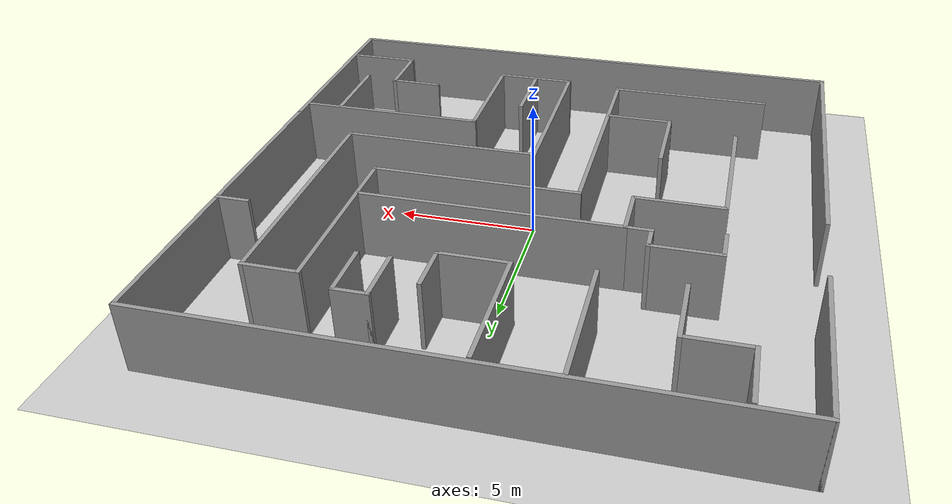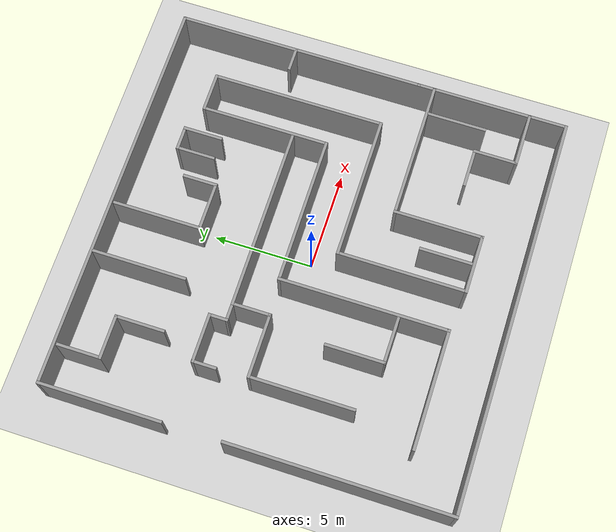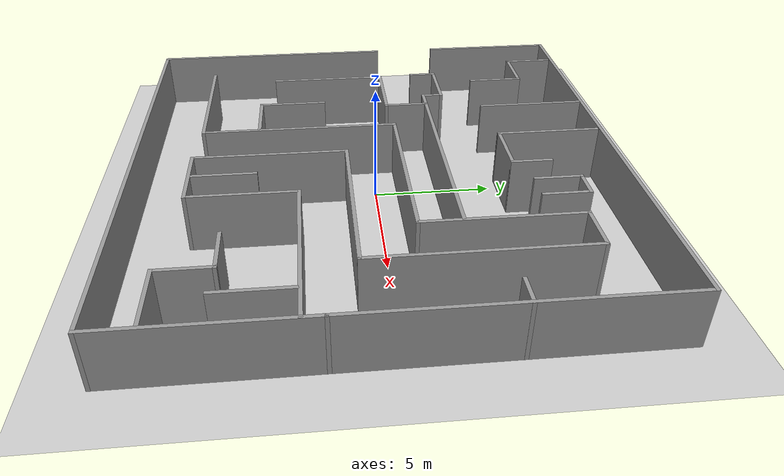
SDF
<sdf version="1.7">
 <world name="default">
  <light name="sun" type="directional">
   <pose>0 0 10 0 -0 0</pose>
   <diffuse>0.8 0.8 0.8 1</diffuse>
   <specular>0.2 0.2 0.2 1</specular>
   <attenuation>
    <range>1000</range>
    <constant>0.9</constant>
    <linear>0.01</linear>
    <quadratic>0.001</quadratic>
   </attenuation>
   <direction>-0.5 0.1 -0.9</direction>
   <spot><inner_angle>0</inner_angle><outer_angle>0</outer_angle><falloff>0</falloff></spot>
  </light>
  <model name="ground_plane">
   <static>1</static>
   <link name="link">
    <collision name="collision">
     <geometry><plane><normal>0 0 1</normal><size>100 100</size></plane></geometry>
     <surface><friction><ode><mu>100</mu><mu2>50</mu2></ode></friction></surface>
    </collision>
    <visual name="visual">
     <cast_shadows>0</cast_shadows>
     <geometry><plane><normal>0 0 1</normal><size>100 100</size></plane></geometry>
     <material>
      <script><uri>file://media/materials/scripts/gazebo.material</uri><name>Gazebo/Grey</name></script>
     </material>
    </visual>
   </link>
  </model>
  <gravity>0 0 -9.8</gravity>
  <magnetic_field>6e-06 2.3e-05 -4.2e-05</magnetic_field>
  <atmosphere type="adiabatic"/>
  <physics type="ode">
   <max_step_size>0.001</max_step_size>
   <real_time_factor>1</real_time_factor>
   <real_time_update_rate>1000</real_time_update_rate>
  </physics>
  <scene><ambient>0.4 0.4 0.4 1</ambient><background>0.7 0.7 0.7 1</background><shadows>1</shadows></scene>
  <spherical_coordinates>
   <surface_model>EARTH_WGS84</surface_model>
   <latitude_deg>0</latitude_deg>
   <longitude_deg>0</longitude_deg>
   <elevation>0</elevation>
   <heading_deg>0</heading_deg>
  </spherical_coordinates>
  <model name="final_maze_1">
   <pose>0.000924 0 0 0 -0 0</pose>
   <link name="Wall_0">
    <collision name="Wall_0_Collision">
     <geometry><box><size>20.15 0.15 2.5</size></box></geometry>
     <pose>0 0 1.25 0 -0 0</pose>
    </collision>
    <visual name="Wall_0_Visual">
     <pose>0 0 1.25 0 -0 0</pose>
     <geometry><box><size>20.15 0.15 2.5</size></box></geometry>
     <material>
      <script><uri>file://media/materials/scripts/gazebo.material</uri><name>Gazebo/Grey</name></script>
      <ambient>1 1 1 1</ambient>
     </material>
     <meta><layer>0</layer></meta>
    </visual>
    <pose>-0.000924 -10 0 0 -0 0</pose>
   </link>
   <link name="Wall_10">
    <collision name="Wall_10_Collision">
     <geometry><box><size>11.15 0.15 2.5</size></box></geometry>
     <pose>0 0 1.25 0 -0 0</pose>
    </collision>
    <visual name="Wall_10_Visual">
     <pose>0 0 1.25 0 -0 0</pose>
     <geometry><box><size>11.15 0.15 2.5</size></box></geometry>
     <material>
      <script><uri>file://media/materials/scripts/gazebo.material</uri><name>Gazebo/Grey</name></script>
      <ambient>1 1 1 1</ambient>
     </material>
     <meta><layer>0</layer></meta>
    </visual>
    <pose>-10.0009 -4.5 0 0 -0 1.5708</pose>
   </link>
   <link name="Wall_18">
    <collision name="Wall_18_Collision">
     <geometry><box><size>2.75 0.15 2.5</size></box></geometry>
     <pose>0 0 1.25 0 -0 0</pose>
    </collision>
    <visual name="Wall_18_Visual">
     <pose>0 0 1.25 0 -0 0</pose>
     <geometry><box><size>2.75 0.15 2.5</size></box></geometry>
     <material>
      <script><uri>file://media/materials/scripts/gazebo.material</uri><name>Gazebo/Grey</name></script>
      <ambient>1 1 1 1</ambient>
     </material>
     <meta><layer>0</layer></meta>
    </visual>
    <pose>8.66548 -8.14504 0 0 -0 3.14159</pose>
   </link>
   <link name="Wall_19">
    <collision name="Wall_19_Collision">
     <geometry><box><size>2.25 0.15 2.5</size></box></geometry>
     <pose>0 0 1.25 0 -0 0</pose>
    </collision>
    <visual name="Wall_19_Visual">
     <pose>0 0 1.25 0 -0 0</pose>
     <geometry><box><size>2.25 0.15 2.5</size></box></geometry>
     <material>
      <script><uri>file://media/materials/scripts/gazebo.material</uri><name>Gazebo/Grey</name></script>
      <ambient>1 1 1 1</ambient>
     </material>
     <meta><layer>0</layer></meta>
    </visual>
    <pose>7.36548 -7.09504 0 0 -0 1.5708</pose>
   </link>
   <link name="Wall_2">
    <collision name="Wall_2_Collision">
     <geometry><box><size>0.15 0.15 2.5</size></box></geometry>
     <pose>0 0 1.25 0 -0 0</pose>
    </collision>
    <visual name="Wall_2_Visual">
     <pose>0 0 1.25 0 -0 0</pose>
     <geometry><box><size>0.15 0.15 2.5</size></box></geometry>
     <material>
      <script><uri>file://media/materials/scripts/gazebo.material</uri><name>Gazebo/Grey</name></script>
      <ambient>1 1 1 1</ambient>
     </material>
     <meta><layer>0</layer></meta>
    </visual>
    <pose>9.99908 -2.43 0 0 -0 0</pose>
   </link>
   <link name="Wall_20">
    <collision name="Wall_20_Collision">
     <geometry><box><size>2 0.15 2.5</size></box></geometry>
     <pose>0 0 1.25 0 -0 0</pose>
    </collision>
    <visual name="Wall_20_Visual">
     <pose>0 0 1.25 0 -0 0</pose>
     <geometry><box><size>2 0.15 2.5</size></box></geometry>
     <material>
      <script><uri>file://media/materials/scripts/gazebo.material</uri><name>Gazebo/Grey</name></script>
      <ambient>1 1 1 1</ambient>
     </material>
     <meta><layer>0</layer></meta>
    </visual>
    <pose>6.44048 -6.04504 0 0 -0 3.14159</pose>
   </link>
   <link name="Wall_22">
    <collision name="Wall_22_Collision">
     <geometry><box><size>7 0.15 2.5</size></box></geometry>
     <pose>0 0 1.25 0 -0 0</pose>
    </collision>
    <visual name="Wall_22_Visual">
     <pose>0 0 1.25 0 -0 0</pose>
     <geometry><box><size>7 0.15 2.5</size></box></geometry>
     <material>
      <script><uri>file://media/materials/scripts/gazebo.material</uri><name>Gazebo/Grey</name></script>
      <ambient>1 1 1 1</ambient>
     </material>
     <meta><layer>0</layer></meta>
    </visual>
    <pose>6.54048 -3.23518 0 0 -0 3.14159</pose>
   </link>
   <link name="Wall_23">
    <collision name="Wall_23_Collision">
     <geometry><box><size>4.5 0.15 2.5</size></box></geometry>
     <pose>0 0 1.25 0 -0 0</pose>
    </collision>
    <visual name="Wall_23_Visual">
     <pose>0 0 1.25 0 -0 0</pose>
     <geometry><box><size>4.5 0.15 2.5</size></box></geometry>
     <material>
      <script><uri>file://media/materials/scripts/gazebo.material</uri><name>Gazebo/Grey</name></script>
      <ambient>1 1 1 1</ambient>
     </material>
     <meta><layer>0</layer></meta>
    </visual>
    <pose>3.11548 -5.41018 0 0 -0 -1.5708</pose>
   </link>
   <link name="Wall_24">
    <collision name="Wall_24_Collision">
     <geometry><box><size>3 0.15 2.5</size></box></geometry>
     <pose>0 0 1.25 0 -0 0</pose>
    </collision>
    <visual name="Wall_24_Visual">
     <pose>0 0 1.25 0 -0 0</pose>
     <geometry><box><size>3 0.15 2.5</size></box></geometry>
     <material>
      <script><uri>file://media/materials/scripts/gazebo.material</uri><name>Gazebo/Grey</name></script>
      <ambient>1 1 1 1</ambient>
     </material>
     <meta><layer>0</layer></meta>
    </visual>
    <pose>1.69048 -7.58518 0 0 -0 3.14159</pose>
   </link>
   <link name="Wall_25">
    <collision name="Wall_25_Collision">
     <geometry><box><size>6.5 0.15 2.5</size></box></geometry>
     <pose>0 0 1.25 0 -0 0</pose>
    </collision>
    <visual name="Wall_25_Visual">
     <pose>0 0 1.25 0 -0 0</pose>
     <geometry><box><size>6.5 0.15 2.5</size></box></geometry>
     <material>
      <script><uri>file://media/materials/scripts/gazebo.material</uri><name>Gazebo/Grey</name></script>
      <ambient>1 1 1 1</ambient>
     </material>
     <meta><layer>0</layer></meta>
    </visual>
    <pose>0.265481 -4.41018 0 0 -0 1.5708</pose>
   </link>
   <link name="Wall_26">
    <collision name="Wall_26_Collision">
     <geometry><box><size>7.25 0.15 2.5</size></box></geometry>
     <pose>0 0 1.25 0 -0 0</pose>
    </collision>
    <visual name="Wall_26_Visual">
     <pose>0 0 1.25 0 -0 0</pose>
     <geometry><box><size>7.25 0.15 2.5</size></box></geometry>
     <material>
      <script><uri>file://media/materials/scripts/gazebo.material</uri><name>Gazebo/Grey</name></script>
      <ambient>1 1 1 1</ambient>
     </material>
     <meta><layer>0</layer></meta>
    </visual>
    <pose>3.81548 -1.23518 0 0 -0 0</pose>
   </link>
   <link name="Wall_27">
    <collision name="Wall_27_Collision">
     <geometry><box><size>8.75 0.15 2.5</size></box></geometry>
     <pose>0 0 1.25 0 -0 0</pose>
    </collision>
    <visual name="Wall_27_Visual">
     <pose>0 0 1.25 0 -0 0</pose>
     <geometry><box><size>8.75 0.15 2.5</size></box></geometry>
     <material>
      <script><uri>file://media/materials/scripts/gazebo.material</uri><name>Gazebo/Grey</name></script>
      <ambient>1 1 1 1</ambient>
     </material>
     <meta><layer>0</layer></meta>
    </visual>
    <pose>7.36548 3.06482 0 0 -0 1.5708</pose>
   </link>
   <link name="Wall_28">
    <collision name="Wall_28_Collision">
     <geometry><box><size>2 0.15 2.5</size></box></geometry>
     <pose>0 0 1.25 0 -0 0</pose>
    </collision>
    <visual name="Wall_28_Visual">
     <pose>0 0 1.25 0 -0 0</pose>
     <geometry><box><size>2 0.15 2.5</size></box></geometry>
     <material>
      <script><uri>file://media/materials/scripts/gazebo.material</uri><name>Gazebo/Grey</name></script>
      <ambient>1 1 1 1</ambient>
     </material>
     <meta><layer>0</layer></meta>
    </visual>
    <pose>6.44048 7.36482 0 0 -0 3.14159</pose>
   </link>
   <link name="Wall_29">
    <collision name="Wall_29_Collision">
     <geometry><box><size>6.5 0.15 2.5</size></box></geometry>
     <pose>0 0 1.25 0 -0 0</pose>
    </collision>
    <visual name="Wall_29_Visual">
     <pose>0 0 1.25 0 -0 0</pose>
     <geometry><box><size>6.5 0.15 2.5</size></box></geometry>
     <material>
      <script><uri>file://media/materials/scripts/gazebo.material</uri><name>Gazebo/Grey</name></script>
      <ambient>1 1 1 1</ambient>
     </material>
     <meta><layer>0</layer></meta>
    </visual>
    <pose>5.51548 4.18982 0 0 -0 -1.5708</pose>
   </link>
   <link name="Wall_30">
    <collision name="Wall_30_Collision">
     <geometry><box><size>7.5 0.15 2.5</size></box></geometry>
     <pose>0 0 1.25 0 -0 0</pose>
    </collision>
    <visual name="Wall_30_Visual">
     <pose>0 0 1.25 0 -0 0</pose>
     <geometry><box><size>7.5 0.15 2.5</size></box></geometry>
     <material>
      <script><uri>file://media/materials/scripts/gazebo.material</uri><name>Gazebo/Grey</name></script>
      <ambient>1 1 1 1</ambient>
     </material>
     <meta><layer>0</layer></meta>
    </visual>
    <pose>1.84048 1.01482 0 0 -0 3.14159</pose>
   </link>
   <link name="Wall_31">
    <collision name="Wall_31_Collision">
     <geometry><box><size>8.5 0.15 2.5</size></box></geometry>
     <pose>0 0 1.25 0 -0 0</pose>
    </collision>
    <visual name="Wall_31_Visual">
     <pose>0 0 1.25 0 -0 0</pose>
     <geometry><box><size>8.5 0.15 2.5</size></box></geometry>
     <material>
      <script><uri>file://media/materials/scripts/gazebo.material</uri><name>Gazebo/Grey</name></script>
      <ambient>1 1 1 1</ambient>
     </material>
     <meta><layer>0</layer></meta>
    </visual>
    <pose>-1.83452 -3.16018 0 0 -0 -1.5708</pose>
   </link>
   <link name="Wall_32">
    <collision name="Wall_32_Collision">
     <geometry><box><size>6 0.15 2.5</size></box></geometry>
     <pose>0 0 1.25 0 -0 0</pose>
    </collision>
    <visual name="Wall_32_Visual">
     <pose>0 0 1.25 0 -0 0</pose>
     <geometry><box><size>6 0.15 2.5</size></box></geometry>
     <material>
      <script><uri>file://media/materials/scripts/gazebo.material</uri><name>Gazebo/Grey</name></script>
      <ambient>1 1 1 1</ambient>
     </material>
     <meta><layer>0</layer></meta>
    </visual>
    <pose>-4.75952 -7.33518 0 0 -0 3.14159</pose>
   </link>
   <link name="Wall_34">
    <collision name="Wall_34_Collision">
     <geometry><box><size>2.25 0.15 2.5</size></box></geometry>
     <pose>0 0 1.25 0 -0 0</pose>
    </collision>
    <visual name="Wall_34_Visual">
     <pose>0 0 1.25 0 -0 0</pose>
     <geometry><box><size>2.25 0.15 2.5</size></box></geometry>
     <material>
      <script><uri>file://media/materials/scripts/gazebo.material</uri><name>Gazebo/Grey</name></script>
      <ambient>1 1 1 1</ambient>
     </material>
     <meta><layer>0</layer></meta>
    </visual>
    <pose>-8.03051 8.7523 0 0 -0 -1.5708</pose>
   </link>
   <link name="Wall_35">
    <collision name="Wall_35_Collision">
     <geometry><box><size>2.25 0.15 2.5</size></box></geometry>
     <pose>0 0 1.25 0 -0 0</pose>
    </collision>
    <visual name="Wall_35_Visual">
     <pose>0 0 1.25 0 -0 0</pose>
     <geometry><box><size>2.25 0.15 2.5</size></box></geometry>
     <material>
      <script><uri>file://media/materials/scripts/gazebo.material</uri><name>Gazebo/Grey</name></script>
      <ambient>1 1 1 1</ambient>
     </material>
     <meta><layer>0</layer></meta>
    </visual>
    <pose>-6.98051 7.7023 0 0 -0 0</pose>
   </link>
   <link name="Wall_36">
    <collision name="Wall_36_Collision">
     <geometry><box><size>2.5 0.15 2.5</size></box></geometry>
     <pose>0 0 1.25 0 -0 0</pose>
    </collision>
    <visual name="Wall_36_Visual">
     <pose>0 0 1.25 0 -0 0</pose>
     <geometry><box><size>2.5 0.15 2.5</size></box></geometry>
     <material>
      <script><uri>file://media/materials/scripts/gazebo.material</uri><name>Gazebo/Grey</name></script>
      <ambient>1 1 1 1</ambient>
     </material>
     <meta><layer>0</layer></meta>
    </visual>
    <pose>-5.93051 6.5273 0 0 -0 -1.5708</pose>
   </link>
   <link name="Wall_38">
    <collision name="Wall_38_Collision">
     <geometry><box><size>4.75 0.15 2.5</size></box></geometry>
     <pose>0 0 1.25 0 -0 0</pose>
    </collision>
    <visual name="Wall_38_Visual">
     <pose>0 0 1.25 0 -0 0</pose>
     <geometry><box><size>4.75 0.15 2.5</size></box></geometry>
     <material>
      <script><uri>file://media/materials/scripts/gazebo.material</uri><name>Gazebo/Grey</name></script>
      <ambient>1 1 1 1</ambient>
     </material>
     <meta><layer>0</layer></meta>
    </visual>
    <pose>-3.20078 7.57992 0 0 -0 -1.5708</pose>
   </link>
   <link name="Wall_4">
    <collision name="Wall_4_Collision">
     <geometry><box><size>20.15 0.15 2.5</size></box></geometry>
     <pose>0 0 1.25 0 -0 0</pose>
    </collision>
    <visual name="Wall_4_Visual">
     <pose>0 0 1.25 0 -0 0</pose>
     <geometry><box><size>20.15 0.15 2.5</size></box></geometry>
     <material>
      <script><uri>file://media/materials/scripts/gazebo.material</uri><name>Gazebo/Grey</name></script>
      <ambient>1 1 1 1</ambient>
     </material>
     <meta><layer>0</layer></meta>
    </visual>
    <pose>-0.000924 10 0 0 -0 0</pose>
   </link>
   <link name="Wall_40">
    <collision name="Wall_40_Collision">
     <geometry><box><size>4.5 0.15 2.5</size></box></geometry>
     <pose>0 0 1.25 0 -0 0</pose>
    </collision>
    <visual name="Wall_40_Visual">
     <pose>0 0 1.25 0 -0 0</pose>
     <geometry><box><size>4.5 0.15 2.5</size></box></geometry>
     <material>
      <script><uri>file://media/materials/scripts/gazebo.material</uri><name>Gazebo/Grey</name></script>
      <ambient>1 1 1 1</ambient>
     </material>
     <meta><layer>0</layer></meta>
    </visual>
    <pose>-0.574094 7.62987 0 0 -0 -1.5708</pose>
   </link>
   <link name="Wall_42">
    <collision name="Wall_42_Collision">
     <geometry><box><size>2.46313 0.15 2.5</size></box></geometry>
     <pose>0 0 1.25 0 -0 0</pose>
    </collision>
    <visual name="Wall_42_Visual">
     <pose>0 0 1.25 0 -0 0</pose>
     <geometry><box><size>2.46313 0.15 2.5</size></box></geometry>
     <material>
      <script><uri>file://media/materials/scripts/gazebo.material</uri><name>Gazebo/Grey</name></script>
      <ambient>1 1 1 1</ambient>
     </material>
     <meta><layer>0</layer></meta>
    </visual>
    <pose>-3.07794 -4.90709 0 0 -0 3.13494</pose>
   </link>
   <link name="Wall_43">
    <collision name="Wall_43_Collision">
     <geometry><box><size>3 0.15 2.5</size></box></geometry>
     <pose>0 0 1.25 0 -0 0</pose>
    </collision>
    <visual name="Wall_43_Visual">
     <pose>0 0 1.25 0 -0 0</pose>
     <geometry><box><size>3 0.15 2.5</size></box></geometry>
     <material>
      <script><uri>file://media/materials/scripts/gazebo.material</uri><name>Gazebo/Grey</name></script>
      <ambient>1 1 1 1</ambient>
     </material>
     <meta><layer>0</layer></meta>
    </visual>
    <pose>-4.2345 -3.47948 0 0 -0 1.5708</pose>
   </link>
   <link name="Wall_45">
    <collision name="Wall_45_Collision">
     <geometry><box><size>2.5 0.15 2.5</size></box></geometry>
     <pose>0 0 1.25 0 -0 0</pose>
    </collision>
    <visual name="Wall_45_Visual">
     <pose>0 0 1.25 0 -0 0</pose>
     <geometry><box><size>2.5 0.15 2.5</size></box></geometry>
     <material>
      <script><uri>file://media/materials/scripts/gazebo.material</uri><name>Gazebo/Grey</name></script>
      <ambient>1 1 1 1</ambient>
     </material>
     <meta><layer>0</layer></meta>
    </visual>
    <pose>0.600906 5.45487 0 0 -0 0</pose>
   </link>
   <link name="Wall_46">
    <collision name="Wall_46_Collision">
     <geometry><box><size>1.75 0.15 2.5</size></box></geometry>
     <pose>0 0 1.25 0 -0 0</pose>
    </collision>
    <visual name="Wall_46_Visual">
     <pose>0 0 1.25 0 -0 0</pose>
     <geometry><box><size>1.75 0.15 2.5</size></box></geometry>
     <material>
      <script><uri>file://media/materials/scripts/gazebo.material</uri><name>Gazebo/Grey</name></script>
      <ambient>1 1 1 1</ambient>
     </material>
     <meta><layer>0</layer></meta>
    </visual>
    <pose>1.77591 6.25487 0 0 -0 1.5708</pose>
   </link>
   <link name="Wall_48">
    <collision name="Wall_48_Collision">
     <geometry><box><size>9.25 0.15 2.5</size></box></geometry>
     <pose>0 0 1.25 0 -0 0</pose>
    </collision>
    <visual name="Wall_48_Visual">
     <pose>0 0 1.25 0 -0 0</pose>
     <geometry><box><size>9.25 0.15 2.5</size></box></geometry>
     <material>
      <script><uri>file://media/materials/scripts/gazebo.material</uri><name>Gazebo/Grey</name></script>
      <ambient>1 1 1 1</ambient>
     </material>
     <meta><layer>0</layer></meta>
    </visual>
    <pose>0.879622 2.71395 0 0 -0 3.14159</pose>
   </link>
   <link name="Wall_49">
    <collision name="Wall_49_Collision">
     <geometry><box><size>2 0.15 2.5</size></box></geometry>
     <pose>0 0 1.25 0 -0 0</pose>
    </collision>
    <visual name="Wall_49_Visual">
     <pose>0 0 1.25 0 -0 0</pose>
     <geometry><box><size>2 0.15 2.5</size></box></geometry>
     <material>
      <script><uri>file://media/materials/scripts/gazebo.material</uri><name>Gazebo/Grey</name></script>
      <ambient>1 1 1 1</ambient>
     </material>
     <meta><layer>0</layer></meta>
    </visual>
    <pose>-3.67038 1.78895 0 0 -0 -1.5708</pose>
   </link>
   <link name="Wall_50">
    <collision name="Wall_50_Collision">
     <geometry><box><size>3.25 0.15 2.5</size></box></geometry>
     <pose>0 0 1.25 0 -0 0</pose>
    </collision>
    <visual name="Wall_50_Visual">
     <pose>0 0 1.25 0 -0 0</pose>
     <geometry><box><size>3.25 0.15 2.5</size></box></geometry>
     <material>
      <script><uri>file://media/materials/scripts/gazebo.material</uri><name>Gazebo/Grey</name></script>
      <ambient>1 1 1 1</ambient>
     </material>
     <meta><layer>0</layer></meta>
    </visual>
    <pose>-5.22038 0.863952 0 0 -0 3.14159</pose>
   </link>
   <link name="Wall_51">
    <collision name="Wall_51_Collision">
     <geometry><box><size>5.25 0.15 2.5</size></box></geometry>
     <pose>0 0 1.25 0 -0 0</pose>
    </collision>
    <visual name="Wall_51_Visual">
     <pose>0 0 1.25 0 -0 0</pose>
     <geometry><box><size>5.25 0.15 2.5</size></box></geometry>
     <material>
      <script><uri>file://media/materials/scripts/gazebo.material</uri><name>Gazebo/Grey</name></script>
      <ambient>1 1 1 1</ambient>
     </material>
     <meta><layer>0</layer></meta>
    </visual>
    <pose>-6.77038 -1.68605 0 0 -0 -1.5708</pose>
   </link>
   <link name="Wall_56">
    <collision name="Wall_56_Collision">
     <geometry><box><size>1.25 0.15 2.5</size></box></geometry>
     <pose>0 0 1.25 0 -0 0</pose>
    </collision>
    <visual name="Wall_56_Visual">
     <pose>0 0 1.25 0 -0 0</pose>
     <geometry><box><size>1.25 0.15 2.5</size></box></geometry>
     <material>
      <script><uri>file://media/materials/scripts/gazebo.material</uri><name>Gazebo/Grey</name></script>
      <ambient>1 1 1 1</ambient>
     </material>
     <meta><layer>0</layer></meta>
    </visual>
    <pose>3.63659 7.89595 0 0 -0 0</pose>
   </link>
   <link name="Wall_59">
    <collision name="Wall_59_Collision">
     <geometry><box><size>2 0.15 2.5</size></box></geometry>
     <pose>0 0 1.25 0 -0 0</pose>
    </collision>
    <visual name="Wall_59_Visual">
     <pose>0 0 1.25 0 -0 0</pose>
     <geometry><box><size>2 0.15 2.5</size></box></geometry>
     <material>
      <script><uri>file://media/materials/scripts/gazebo.material</uri><name>Gazebo/Grey</name></script>
      <ambient>1 1 1 1</ambient>
     </material>
     <meta><layer>0</layer></meta>
    </visual>
    <pose>3.08659 6.97095 0 0 -0 -1.5708</pose>
   </link>
   <link name="Wall_6">
    <collision name="Wall_6_Collision">
     <geometry><box><size>20.15 0.15 2.5</size></box></geometry>
     <pose>0 0 1.25 0 -0 0</pose>
    </collision>
    <visual name="Wall_6_Visual">
     <pose>0 0 1.25 0 -0 0</pose>
     <geometry><box><size>20.15 0.15 2.5</size></box></geometry>
     <material>
      <script><uri>file://media/materials/scripts/gazebo.material</uri><name>Gazebo/Grey</name></script>
      <ambient>1 1 1 1</ambient>
     </material>
     <meta><layer>0</layer></meta>
    </visual>
    <pose>9.99908 0 0 0 -0 -1.5708</pose>
   </link>
   <link name="Wall_61">
    <collision name="Wall_61_Collision">
     <geometry><box><size>2 0.15 2.5</size></box></geometry>
     <pose>0 0 1.25 0 -0 0</pose>
    </collision>
    <visual name="Wall_61_Visual">
     <pose>0 0 1.25 0 -0 0</pose>
     <geometry><box><size>2 0.15 2.5</size></box></geometry>
     <material>
      <script><uri>file://media/materials/scripts/gazebo.material</uri><name>Gazebo/Grey</name></script>
      <ambient>1 1 1 1</ambient>
     </material>
     <meta><layer>0</layer></meta>
    </visual>
    <pose>4.18659 6.97095 0 0 -0 -1.5708</pose>
   </link>
   <link name="Wall_63">
    <collision name="Wall_63_Collision">
     <geometry><box><size>1.25 0.15 2.5</size></box></geometry>
     <pose>0 0 1.25 0 -0 0</pose>
    </collision>
    <visual name="Wall_63_Visual">
     <pose>0 0 1.25 0 -0 0</pose>
     <geometry><box><size>1.25 0.15 2.5</size></box></geometry>
     <material>
      <script><uri>file://media/materials/scripts/gazebo.material</uri><name>Gazebo/Grey</name></script>
      <ambient>1 1 1 1</ambient>
     </material>
     <meta><layer>0</layer></meta>
    </visual>
    <pose>9.45092 4.03335 0 0 -0 3.14159</pose>
   </link>
   <link name="Wall_65">
    <collision name="Wall_65_Collision">
     <geometry><box><size>3 0.15 2.5</size></box></geometry>
     <pose>0 0 1.25 0 -0 0</pose>
    </collision>
    <visual name="Wall_65_Visual">
     <pose>0 0 1.25 0 -0 0</pose>
     <geometry><box><size>3 0.15 2.5</size></box></geometry>
     <material>
      <script><uri>file://media/materials/scripts/gazebo.material</uri><name>Gazebo/Grey</name></script>
      <ambient>1 1 1 1</ambient>
     </material>
     <meta><layer>0</layer></meta>
    </visual>
    <pose>8.62304 -4.7773 0 0 -0 -1.5708</pose>
   </link>
   <link name="Wall_68">
    <collision name="Wall_68_Collision">
     <geometry><box><size>2.75 0.15 2.5</size></box></geometry>
     <pose>0 0 1.25 0 -0 0</pose>
    </collision>
    <visual name="Wall_68_Visual">
     <pose>0 0 1.25 0 -0 0</pose>
     <geometry><box><size>2.75 0.15 2.5</size></box></geometry>
     <material>
      <script><uri>file://media/materials/scripts/gazebo.material</uri><name>Gazebo/Grey</name></script>
      <ambient>1 1 1 1</ambient>
     </material>
     <meta><layer>0</layer></meta>
    </visual>
    <pose>1.67055 -6.24317 0 0 -0 1.5708</pose>
   </link>
   <link name="Wall_70">
    <collision name="Wall_70_Collision">
     <geometry><box><size>1 0.15 2.5</size></box></geometry>
     <pose>0 0 1.25 0 -0 0</pose>
    </collision>
    <visual name="Wall_70_Visual">
     <pose>0 0 1.25 0 -0 0</pose>
     <geometry><box><size>1 0.15 2.5</size></box></geometry>
     <material>
      <script><uri>file://media/materials/scripts/gazebo.material</uri><name>Gazebo/Grey</name></script>
      <ambient>1 1 1 1</ambient>
     </material>
     <meta><layer>0</layer></meta>
    </visual>
    <pose>-4.09538 2.71395 0 0 -0 3.14159</pose>
   </link>
   <link name="Wall_71">
    <collision name="Wall_71_Collision">
     <geometry><box><size>1 0.15 2.5</size></box></geometry>
     <pose>0 0 1.25 0 -0 0</pose>
    </collision>
    <visual name="Wall_71_Visual">
     <pose>0 0 1.25 0 -0 0</pose>
     <geometry><box><size>1 0.15 2.5</size></box></geometry>
     <material>
      <script><uri>file://media/materials/scripts/gazebo.material</uri><name>Gazebo/Grey</name></script>
      <ambient>1 1 1 1</ambient>
     </material>
     <meta><layer>0</layer></meta>
    </visual>
    <pose>-4.52038 3.13895 0 0 -0 1.5708</pose>
   </link>
   <link name="Wall_72">
    <collision name="Wall_72_Collision">
     <geometry><box><size>2.5 0.15 2.5</size></box></geometry>
     <pose>0 0 1.25 0 -0 0</pose>
    </collision>
    <visual name="Wall_72_Visual">
     <pose>0 0 1.25 0 -0 0</pose>
     <geometry><box><size>2.5 0.15 2.5</size></box></geometry>
     <material>
      <script><uri>file://media/materials/scripts/gazebo.material</uri><name>Gazebo/Grey</name></script>
      <ambient>1 1 1 1</ambient>
     </material>
     <meta><layer>0</layer></meta>
    </visual>
    <pose>-5.69538 3.56395 0 0 -0 3.14159</pose>
   </link>
   <link name="Wall_73">
    <collision name="Wall_73_Collision">
     <geometry><box><size>1.25 0.15 2.5</size></box></geometry>
     <pose>0 0 1.25 0 -0 0</pose>
    </collision>
    <visual name="Wall_73_Visual">
     <pose>0 0 1.25 0 -0 0</pose>
     <geometry><box><size>1.25 0.15 2.5</size></box></geometry>
     <material>
      <script><uri>file://media/materials/scripts/gazebo.material</uri><name>Gazebo/Grey</name></script>
      <ambient>1 1 1 1</ambient>
     </material>
     <meta><layer>0</layer></meta>
    </visual>
    <pose>-6.87038 3.01395 0 0 -0 -1.5708</pose>
   </link>
   <link name="Wall_8">
    <collision name="Wall_8_Collision">
     <geometry><box><size>6.15 0.15 2.5</size></box></geometry>
     <pose>0 0 1.25 0 -0 0</pose>
    </collision>
    <visual name="Wall_8_Visual">
     <pose>0 0 1.25 0 -0 0</pose>
     <geometry><box><size>6.15 0.15 2.5</size></box></geometry>
     <material>
      <script><uri>file://media/materials/scripts/gazebo.material</uri><name>Gazebo/Grey</name></script>
      <ambient>1 1 1 1</ambient>
     </material>
     <meta><layer>0</layer></meta>
    </visual>
    <pose>-10.0009 7 0 0 -0 -1.5708</pose>
   </link>
   <static>1</static>
  </model>
 </world>
</sdf>
